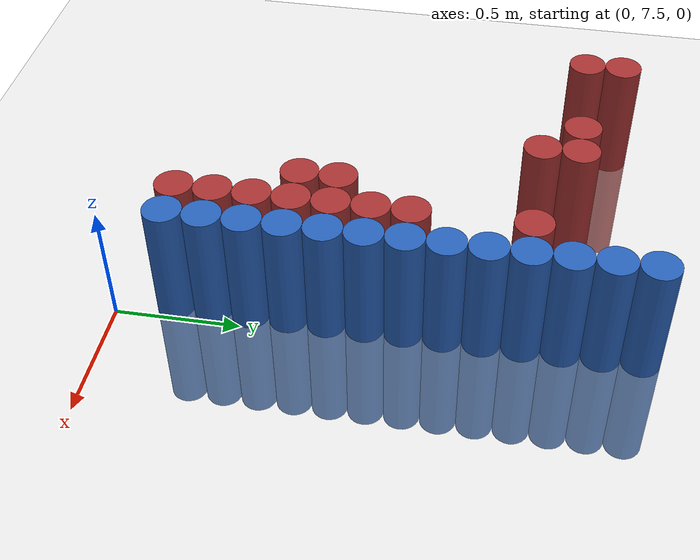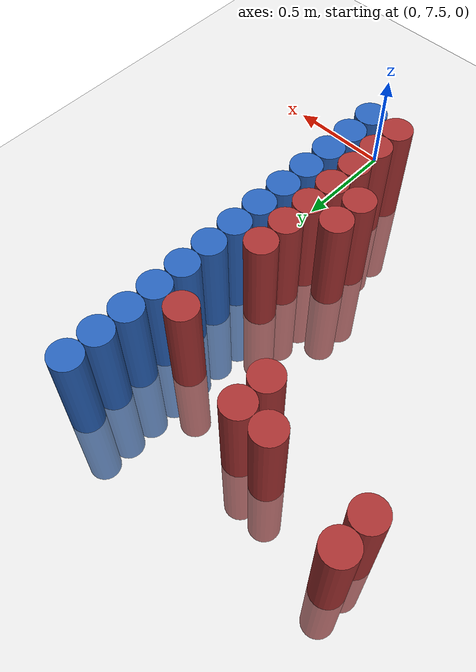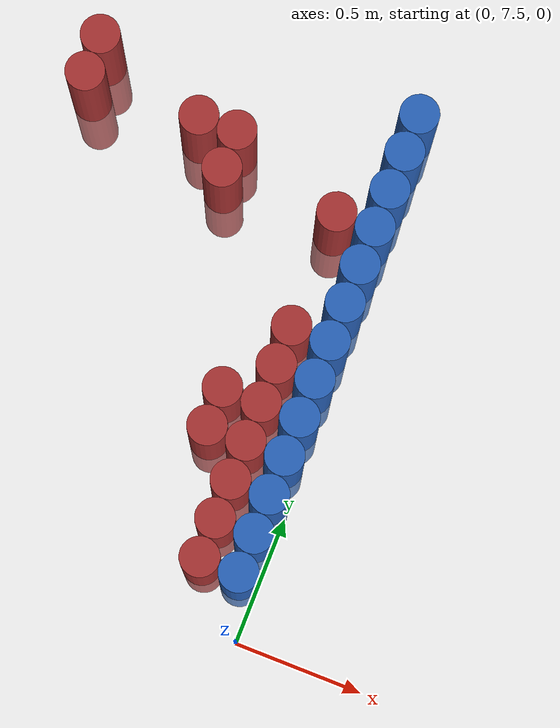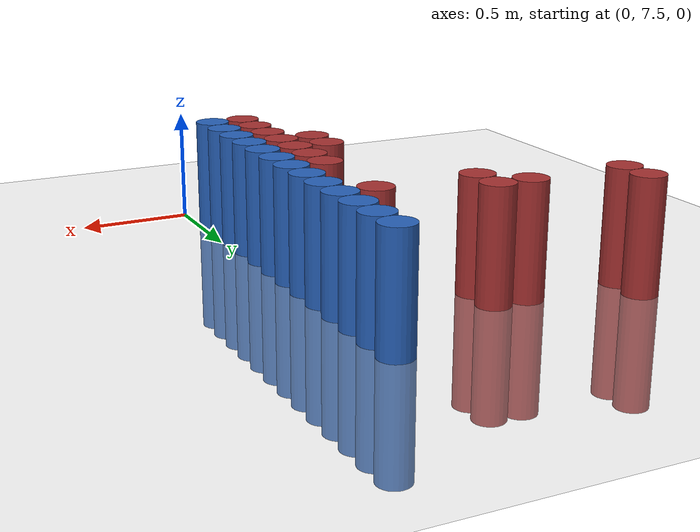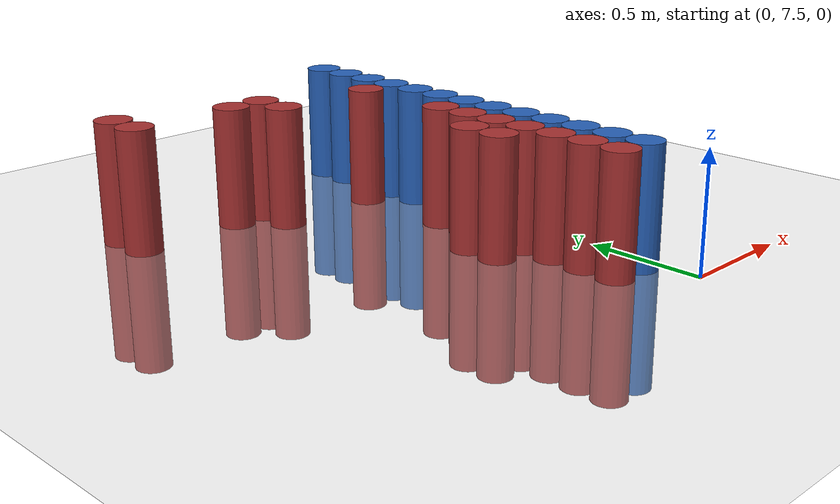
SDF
<sdf version="1.6">
 <world name="default">
  <model name="ground_plane">
   <static>1</static>
   <link name="link">
    <collision name="collision">
     <geometry><plane><normal>0 0 1</normal><size>100 100</size></plane></geometry>
     <surface><friction><ode><mu>100</mu><mu2>50</mu2></ode></friction></surface>
    </collision>
    <visual name="visual">
     <cast_shadows>0</cast_shadows>
     <geometry><plane><normal>0 0 1</normal><size>100 100</size></plane></geometry>
     <material>
      <script><uri>file://media/materials/scripts/gazebo.material</uri><name>Gazebo/Grey</name></script>
     </material>
    </visual>
   </link>
  </model>
  <model name="unit_cylinder_209">
   <static>1</static>
   <pose>-1.275000 9.225000 0.000000 0.000000 0.000000 0.000000</pose>
   <link name="link">
    <inertial>
     <mass>1</mass>
     <inertia><ixx>0.145833</ixx><ixy>0</ixy><ixz>0</ixz><iyy>0.145833</iyy><iyz>0</iyz><izz>0.125</izz></inertia>
    </inertial>
    <collision name="collision">
     <geometry><cylinder><radius>0.075000</radius><length>1</length></cylinder></geometry>
    </collision>
    <visual name="visual">
     <geometry><cylinder><radius>0.075000</radius><length>1</length></cylinder></geometry>
     <material>
      <ambient>0.648000 0.192000 0.192000 1</ambient>
      <diffuse>0.648000 0.192000 0.192000 1</diffuse>
     </material>
     <material>
      <script><name>Gazebo/Grey</name><uri>file://media/materials/scripts/gazebo.material</uri></script>
     </material>
    </visual>
   </link>
  </model>
  <model name="unit_cylinder_210">
   <static>1</static>
   <pose>-1.275000 9.375000 0.000000 0.000000 0.000000 0.000000</pose>
   <link name="link">
    <inertial>
     <mass>1</mass>
     <inertia><ixx>0.145833</ixx><ixy>0</ixy><ixz>0</ixz><iyy>0.145833</iyy><iyz>0</iyz><izz>0.125</izz></inertia>
    </inertial>
    <collision name="collision">
     <geometry><cylinder><radius>0.075000</radius><length>1</length></cylinder></geometry>
    </collision>
    <visual name="visual">
     <geometry><cylinder><radius>0.075000</radius><length>1</length></cylinder></geometry>
     <material>
      <ambient>0.648000 0.192000 0.192000 1</ambient>
      <diffuse>0.648000 0.192000 0.192000 1</diffuse>
     </material>
     <material>
      <script><name>Gazebo/Grey</name><uri>file://media/materials/scripts/gazebo.material</uri></script>
     </material>
    </visual>
   </link>
  </model>
  <model name="unit_cylinder_213">
   <static>1</static>
   <pose>-0.825000 9.225000 0.000000 0.000000 0.000000 0.000000</pose>
   <link name="link">
    <inertial>
     <mass>1</mass>
     <inertia><ixx>0.145833</ixx><ixy>0</ixy><ixz>0</ixz><iyy>0.145833</iyy><iyz>0</iyz><izz>0.125</izz></inertia>
    </inertial>
    <collision name="collision">
     <geometry><cylinder><radius>0.075000</radius><length>1</length></cylinder></geometry>
    </collision>
    <visual name="visual">
     <geometry><cylinder><radius>0.075000</radius><length>1</length></cylinder></geometry>
     <material>
      <ambient>0.648000 0.192000 0.192000 1</ambient>
      <diffuse>0.648000 0.192000 0.192000 1</diffuse>
     </material>
     <material>
      <script><name>Gazebo/Grey</name><uri>file://media/materials/scripts/gazebo.material</uri></script>
     </material>
    </visual>
   </link>
  </model>
  <model name="unit_cylinder_216">
   <static>1</static>
   <pose>-0.675000 9.075000 0.000000 0.000000 0.000000 0.000000</pose>
   <link name="link">
    <inertial>
     <mass>1</mass>
     <inertia><ixx>0.145833</ixx><ixy>0</ixy><ixz>0</ixz><iyy>0.145833</iyy><iyz>0</iyz><izz>0.125</izz></inertia>
    </inertial>
    <collision name="collision">
     <geometry><cylinder><radius>0.075000</radius><length>1</length></cylinder></geometry>
    </collision>
    <visual name="visual">
     <geometry><cylinder><radius>0.075000</radius><length>1</length></cylinder></geometry>
     <material>
      <ambient>0.648000 0.192000 0.192000 1</ambient>
      <diffuse>0.648000 0.192000 0.192000 1</diffuse>
     </material>
     <material>
      <script><name>Gazebo/Grey</name><uri>file://media/materials/scripts/gazebo.material</uri></script>
     </material>
    </visual>
   </link>
  </model>
  <model name="unit_cylinder_217">
   <static>1</static>
   <pose>-0.675000 9.225000 0.000000 0.000000 0.000000 0.000000</pose>
   <link name="link">
    <inertial>
     <mass>1</mass>
     <inertia><ixx>0.145833</ixx><ixy>0</ixy><ixz>0</ixz><iyy>0.145833</iyy><iyz>0</iyz><izz>0.125</izz></inertia>
    </inertial>
    <collision name="collision">
     <geometry><cylinder><radius>0.075000</radius><length>1</length></cylinder></geometry>
    </collision>
    <visual name="visual">
     <geometry><cylinder><radius>0.075000</radius><length>1</length></cylinder></geometry>
     <material>
      <ambient>0.648000 0.192000 0.192000 1</ambient>
      <diffuse>0.648000 0.192000 0.192000 1</diffuse>
     </material>
     <material>
      <script><name>Gazebo/Grey</name><uri>file://media/materials/scripts/gazebo.material</uri></script>
     </material>
    </visual>
   </link>
  </model>
  <model name="unit_cylinder_221">
   <static>1</static>
   <pose>-0.375000 8.175000 0.000000 0.000000 0.000000 0.000000</pose>
   <link name="link">
    <inertial>
     <mass>1</mass>
     <inertia><ixx>0.145833</ixx><ixy>0</ixy><ixz>0</ixz><iyy>0.145833</iyy><iyz>0</iyz><izz>0.125</izz></inertia>
    </inertial>
    <collision name="collision">
     <geometry><cylinder><radius>0.075000</radius><length>1</length></cylinder></geometry>
    </collision>
    <visual name="visual">
     <geometry><cylinder><radius>0.075000</radius><length>1</length></cylinder></geometry>
     <material>
      <ambient>0.648000 0.192000 0.192000 1</ambient>
      <diffuse>0.648000 0.192000 0.192000 1</diffuse>
     </material>
     <material>
      <script><name>Gazebo/Grey</name><uri>file://media/materials/scripts/gazebo.material</uri></script>
     </material>
    </visual>
   </link>
  </model>
  <model name="unit_cylinder_222">
   <static>1</static>
   <pose>-0.375000 8.325000 0.000000 0.000000 0.000000 0.000000</pose>
   <link name="link">
    <inertial>
     <mass>1</mass>
     <inertia><ixx>0.145833</ixx><ixy>0</ixy><ixz>0</ixz><iyy>0.145833</iyy><iyz>0</iyz><izz>0.125</izz></inertia>
    </inertial>
    <collision name="collision">
     <geometry><cylinder><radius>0.075000</radius><length>1</length></cylinder></geometry>
    </collision>
    <visual name="visual">
     <geometry><cylinder><radius>0.075000</radius><length>1</length></cylinder></geometry>
     <material>
      <ambient>0.648000 0.192000 0.192000 1</ambient>
      <diffuse>0.648000 0.192000 0.192000 1</diffuse>
     </material>
     <material>
      <script><name>Gazebo/Grey</name><uri>file://media/materials/scripts/gazebo.material</uri></script>
     </material>
    </visual>
   </link>
  </model>
  <model name="unit_cylinder_235">
   <static>1</static>
   <pose>-0.225000 7.725000 0.000000 0.000000 0.000000 0.000000</pose>
   <link name="link">
    <inertial>
     <mass>1</mass>
     <inertia><ixx>0.145833</ixx><ixy>0</ixy><ixz>0</ixz><iyy>0.145833</iyy><iyz>0</iyz><izz>0.125</izz></inertia>
    </inertial>
    <collision name="collision">
     <geometry><cylinder><radius>0.075000</radius><length>1</length></cylinder></geometry>
    </collision>
    <visual name="visual">
     <geometry><cylinder><radius>0.075000</radius><length>1</length></cylinder></geometry>
     <material>
      <ambient>0.648000 0.192000 0.192000 1</ambient>
      <diffuse>0.648000 0.192000 0.192000 1</diffuse>
     </material>
     <material>
      <script><name>Gazebo/Grey</name><uri>file://media/materials/scripts/gazebo.material</uri></script>
     </material>
    </visual>
   </link>
  </model>
  <model name="unit_cylinder_236">
   <static>1</static>
   <pose>-0.225000 7.875000 0.000000 0.000000 0.000000 0.000000</pose>
   <link name="link">
    <inertial>
     <mass>1</mass>
     <inertia><ixx>0.145833</ixx><ixy>0</ixy><ixz>0</ixz><iyy>0.145833</iyy><iyz>0</iyz><izz>0.125</izz></inertia>
    </inertial>
    <collision name="collision">
     <geometry><cylinder><radius>0.075000</radius><length>1</length></cylinder></geometry>
    </collision>
    <visual name="visual">
     <geometry><cylinder><radius>0.075000</radius><length>1</length></cylinder></geometry>
     <material>
      <ambient>0.648000 0.192000 0.192000 1</ambient>
      <diffuse>0.648000 0.192000 0.192000 1</diffuse>
     </material>
     <material>
      <script><name>Gazebo/Grey</name><uri>file://media/materials/scripts/gazebo.material</uri></script>
     </material>
    </visual>
   </link>
  </model>
  <model name="unit_cylinder_237">
   <static>1</static>
   <pose>-0.225000 8.025000 0.000000 0.000000 0.000000 0.000000</pose>
   <link name="link">
    <inertial>
     <mass>1</mass>
     <inertia><ixx>0.145833</ixx><ixy>0</ixy><ixz>0</ixz><iyy>0.145833</iyy><iyz>0</iyz><izz>0.125</izz></inertia>
    </inertial>
    <collision name="collision">
     <geometry><cylinder><radius>0.075000</radius><length>1</length></cylinder></geometry>
    </collision>
    <visual name="visual">
     <geometry><cylinder><radius>0.075000</radius><length>1</length></cylinder></geometry>
     <material>
      <ambient>0.648000 0.192000 0.192000 1</ambient>
      <diffuse>0.648000 0.192000 0.192000 1</diffuse>
     </material>
     <material>
      <script><name>Gazebo/Grey</name><uri>file://media/materials/scripts/gazebo.material</uri></script>
     </material>
    </visual>
   </link>
  </model>
  <model name="unit_cylinder_238">
   <static>1</static>
   <pose>-0.225000 8.175000 0.000000 0.000000 0.000000 0.000000</pose>
   <link name="link">
    <inertial>
     <mass>1</mass>
     <inertia><ixx>0.145833</ixx><ixy>0</ixy><ixz>0</ixz><iyy>0.145833</iyy><iyz>0</iyz><izz>0.125</izz></inertia>
    </inertial>
    <collision name="collision">
     <geometry><cylinder><radius>0.075000</radius><length>1</length></cylinder></geometry>
    </collision>
    <visual name="visual">
     <geometry><cylinder><radius>0.075000</radius><length>1</length></cylinder></geometry>
     <material>
      <ambient>0.648000 0.192000 0.192000 1</ambient>
      <diffuse>0.648000 0.192000 0.192000 1</diffuse>
     </material>
     <material>
      <script><name>Gazebo/Grey</name><uri>file://media/materials/scripts/gazebo.material</uri></script>
     </material>
    </visual>
   </link>
  </model>
  <model name="unit_cylinder_239">
   <static>1</static>
   <pose>-0.225000 8.325000 0.000000 0.000000 0.000000 0.000000</pose>
   <link name="link">
    <inertial>
     <mass>1</mass>
     <inertia><ixx>0.145833</ixx><ixy>0</ixy><ixz>0</ixz><iyy>0.145833</iyy><iyz>0</iyz><izz>0.125</izz></inertia>
    </inertial>
    <collision name="collision">
     <geometry><cylinder><radius>0.075000</radius><length>1</length></cylinder></geometry>
    </collision>
    <visual name="visual">
     <geometry><cylinder><radius>0.075000</radius><length>1</length></cylinder></geometry>
     <material>
      <ambient>0.648000 0.192000 0.192000 1</ambient>
      <diffuse>0.648000 0.192000 0.192000 1</diffuse>
     </material>
     <material>
      <script><name>Gazebo/Grey</name><uri>file://media/materials/scripts/gazebo.material</uri></script>
     </material>
    </visual>
   </link>
  </model>
  <model name="unit_cylinder_240">
   <static>1</static>
   <pose>-0.225000 8.475000 0.000000 0.000000 0.000000 0.000000</pose>
   <link name="link">
    <inertial>
     <mass>1</mass>
     <inertia><ixx>0.145833</ixx><ixy>0</ixy><ixz>0</ixz><iyy>0.145833</iyy><iyz>0</iyz><izz>0.125</izz></inertia>
    </inertial>
    <collision name="collision">
     <geometry><cylinder><radius>0.075000</radius><length>1</length></cylinder></geometry>
    </collision>
    <visual name="visual">
     <geometry><cylinder><radius>0.075000</radius><length>1</length></cylinder></geometry>
     <material>
      <ambient>0.648000 0.192000 0.192000 1</ambient>
      <diffuse>0.648000 0.192000 0.192000 1</diffuse>
     </material>
     <material>
      <script><name>Gazebo/Grey</name><uri>file://media/materials/scripts/gazebo.material</uri></script>
     </material>
    </visual>
   </link>
  </model>
  <model name="unit_cylinder_241">
   <static>1</static>
   <pose>-0.225000 8.625000 0.000000 0.000000 0.000000 0.000000</pose>
   <link name="link">
    <inertial>
     <mass>1</mass>
     <inertia><ixx>0.145833</ixx><ixy>0</ixy><ixz>0</ixz><iyy>0.145833</iyy><iyz>0</iyz><izz>0.125</izz></inertia>
    </inertial>
    <collision name="collision">
     <geometry><cylinder><radius>0.075000</radius><length>1</length></cylinder></geometry>
    </collision>
    <visual name="visual">
     <geometry><cylinder><radius>0.075000</radius><length>1</length></cylinder></geometry>
     <material>
      <ambient>0.648000 0.192000 0.192000 1</ambient>
      <diffuse>0.648000 0.192000 0.192000 1</diffuse>
     </material>
     <material>
      <script><name>Gazebo/Grey</name><uri>file://media/materials/scripts/gazebo.material</uri></script>
     </material>
    </visual>
   </link>
  </model>
  <model name="unit_cylinder_242">
   <static>1</static>
   <pose>-0.225000 9.075000 0.000000 0.000000 0.000000 0.000000</pose>
   <link name="link">
    <inertial>
     <mass>1</mass>
     <inertia><ixx>0.145833</ixx><ixy>0</ixy><ixz>0</ixz><iyy>0.145833</iyy><iyz>0</iyz><izz>0.125</izz></inertia>
    </inertial>
    <collision name="collision">
     <geometry><cylinder><radius>0.075000</radius><length>1</length></cylinder></geometry>
    </collision>
    <visual name="visual">
     <geometry><cylinder><radius>0.075000</radius><length>1</length></cylinder></geometry>
     <material>
      <ambient>0.648000 0.192000 0.192000 1</ambient>
      <diffuse>0.648000 0.192000 0.192000 1</diffuse>
     </material>
     <material>
      <script><name>Gazebo/Grey</name><uri>file://media/materials/scripts/gazebo.material</uri></script>
     </material>
    </visual>
   </link>
  </model>
  <model name="unit_cylinder_260">
   <static>1</static>
   <pose>-0.075000 7.725000 0.000000 0.000000 0.000000 0.000000</pose>
   <link name="link">
    <inertial>
     <mass>1</mass>
     <inertia><ixx>0.145833</ixx><ixy>0</ixy><ixz>0</ixz><iyy>0.145833</iyy><iyz>0</iyz><izz>0.125</izz></inertia>
    </inertial>
    <collision name="collision">
     <geometry><cylinder><radius>0.075000</radius><length>1</length></cylinder></geometry>
    </collision>
    <visual name="visual">
     <geometry><cylinder><radius>0.075000</radius><length>1</length></cylinder></geometry>
     <material>
      <ambient>0.152000 0.379000 0.720000 1</ambient>
      <diffuse>0.152000 0.379000 0.720000 1</diffuse>
     </material>
     <material>
      <script><name>Gazebo/Grey</name><uri>file://media/materials/scripts/gazebo.material</uri></script>
     </material>
    </visual>
   </link>
  </model>
  <model name="unit_cylinder_261">
   <static>1</static>
   <pose>-0.075000 7.875000 0.000000 0.000000 0.000000 0.000000</pose>
   <link name="link">
    <inertial>
     <mass>1</mass>
     <inertia><ixx>0.145833</ixx><ixy>0</ixy><ixz>0</ixz><iyy>0.145833</iyy><iyz>0</iyz><izz>0.125</izz></inertia>
    </inertial>
    <collision name="collision">
     <geometry><cylinder><radius>0.075000</radius><length>1</length></cylinder></geometry>
    </collision>
    <visual name="visual">
     <geometry><cylinder><radius>0.075000</radius><length>1</length></cylinder></geometry>
     <material>
      <ambient>0.152000 0.379000 0.720000 1</ambient>
      <diffuse>0.152000 0.379000 0.720000 1</diffuse>
     </material>
     <material>
      <script><name>Gazebo/Grey</name><uri>file://media/materials/scripts/gazebo.material</uri></script>
     </material>
    </visual>
   </link>
  </model>
  <model name="unit_cylinder_262">
   <static>1</static>
   <pose>-0.075000 8.025000 0.000000 0.000000 0.000000 0.000000</pose>
   <link name="link">
    <inertial>
     <mass>1</mass>
     <inertia><ixx>0.145833</ixx><ixy>0</ixy><ixz>0</ixz><iyy>0.145833</iyy><iyz>0</iyz><izz>0.125</izz></inertia>
    </inertial>
    <collision name="collision">
     <geometry><cylinder><radius>0.075000</radius><length>1</length></cylinder></geometry>
    </collision>
    <visual name="visual">
     <geometry><cylinder><radius>0.075000</radius><length>1</length></cylinder></geometry>
     <material>
      <ambient>0.152000 0.379000 0.720000 1</ambient>
      <diffuse>0.152000 0.379000 0.720000 1</diffuse>
     </material>
     <material>
      <script><name>Gazebo/Grey</name><uri>file://media/materials/scripts/gazebo.material</uri></script>
     </material>
    </visual>
   </link>
  </model>
  <model name="unit_cylinder_263">
   <static>1</static>
   <pose>-0.075000 8.175000 0.000000 0.000000 0.000000 0.000000</pose>
   <link name="link">
    <inertial>
     <mass>1</mass>
     <inertia><ixx>0.145833</ixx><ixy>0</ixy><ixz>0</ixz><iyy>0.145833</iyy><iyz>0</iyz><izz>0.125</izz></inertia>
    </inertial>
    <collision name="collision">
     <geometry><cylinder><radius>0.075000</radius><length>1</length></cylinder></geometry>
    </collision>
    <visual name="visual">
     <geometry><cylinder><radius>0.075000</radius><length>1</length></cylinder></geometry>
     <material>
      <ambient>0.152000 0.379000 0.720000 1</ambient>
      <diffuse>0.152000 0.379000 0.720000 1</diffuse>
     </material>
     <material>
      <script><name>Gazebo/Grey</name><uri>file://media/materials/scripts/gazebo.material</uri></script>
     </material>
    </visual>
   </link>
  </model>
  <model name="unit_cylinder_264">
   <static>1</static>
   <pose>-0.075000 8.325000 0.000000 0.000000 0.000000 0.000000</pose>
   <link name="link">
    <inertial>
     <mass>1</mass>
     <inertia><ixx>0.145833</ixx><ixy>0</ixy><ixz>0</ixz><iyy>0.145833</iyy><iyz>0</iyz><izz>0.125</izz></inertia>
    </inertial>
    <collision name="collision">
     <geometry><cylinder><radius>0.075000</radius><length>1</length></cylinder></geometry>
    </collision>
    <visual name="visual">
     <geometry><cylinder><radius>0.075000</radius><length>1</length></cylinder></geometry>
     <material>
      <ambient>0.152000 0.379000 0.720000 1</ambient>
      <diffuse>0.152000 0.379000 0.720000 1</diffuse>
     </material>
     <material>
      <script><name>Gazebo/Grey</name><uri>file://media/materials/scripts/gazebo.material</uri></script>
     </material>
    </visual>
   </link>
  </model>
  <model name="unit_cylinder_265">
   <static>1</static>
   <pose>-0.075000 8.475000 0.000000 0.000000 0.000000 0.000000</pose>
   <link name="link">
    <inertial>
     <mass>1</mass>
     <inertia><ixx>0.145833</ixx><ixy>0</ixy><ixz>0</ixz><iyy>0.145833</iyy><iyz>0</iyz><izz>0.125</izz></inertia>
    </inertial>
    <collision name="collision">
     <geometry><cylinder><radius>0.075000</radius><length>1</length></cylinder></geometry>
    </collision>
    <visual name="visual">
     <geometry><cylinder><radius>0.075000</radius><length>1</length></cylinder></geometry>
     <material>
      <ambient>0.152000 0.379000 0.720000 1</ambient>
      <diffuse>0.152000 0.379000 0.720000 1</diffuse>
     </material>
     <material>
      <script><name>Gazebo/Grey</name><uri>file://media/materials/scripts/gazebo.material</uri></script>
     </material>
    </visual>
   </link>
  </model>
  <model name="unit_cylinder_266">
   <static>1</static>
   <pose>-0.075000 8.625000 0.000000 0.000000 0.000000 0.000000</pose>
   <link name="link">
    <inertial>
     <mass>1</mass>
     <inertia><ixx>0.145833</ixx><ixy>0</ixy><ixz>0</ixz><iyy>0.145833</iyy><iyz>0</iyz><izz>0.125</izz></inertia>
    </inertial>
    <collision name="collision">
     <geometry><cylinder><radius>0.075000</radius><length>1</length></cylinder></geometry>
    </collision>
    <visual name="visual">
     <geometry><cylinder><radius>0.075000</radius><length>1</length></cylinder></geometry>
     <material>
      <ambient>0.152000 0.379000 0.720000 1</ambient>
      <diffuse>0.152000 0.379000 0.720000 1</diffuse>
     </material>
     <material>
      <script><name>Gazebo/Grey</name><uri>file://media/materials/scripts/gazebo.material</uri></script>
     </material>
    </visual>
   </link>
  </model>
  <model name="unit_cylinder_267">
   <static>1</static>
   <pose>-0.075000 8.775000 0.000000 0.000000 0.000000 0.000000</pose>
   <link name="link">
    <inertial>
     <mass>1</mass>
     <inertia><ixx>0.145833</ixx><ixy>0</ixy><ixz>0</ixz><iyy>0.145833</iyy><iyz>0</iyz><izz>0.125</izz></inertia>
    </inertial>
    <collision name="collision">
     <geometry><cylinder><radius>0.075000</radius><length>1</length></cylinder></geometry>
    </collision>
    <visual name="visual">
     <geometry><cylinder><radius>0.075000</radius><length>1</length></cylinder></geometry>
     <material>
      <ambient>0.152000 0.379000 0.720000 1</ambient>
      <diffuse>0.152000 0.379000 0.720000 1</diffuse>
     </material>
     <material>
      <script><name>Gazebo/Grey</name><uri>file://media/materials/scripts/gazebo.material</uri></script>
     </material>
    </visual>
   </link>
  </model>
  <model name="unit_cylinder_268">
   <static>1</static>
   <pose>-0.075000 8.925000 0.000000 0.000000 0.000000 0.000000</pose>
   <link name="link">
    <inertial>
     <mass>1</mass>
     <inertia><ixx>0.145833</ixx><ixy>0</ixy><ixz>0</ixz><iyy>0.145833</iyy><iyz>0</iyz><izz>0.125</izz></inertia>
    </inertial>
    <collision name="collision">
     <geometry><cylinder><radius>0.075000</radius><length>1</length></cylinder></geometry>
    </collision>
    <visual name="visual">
     <geometry><cylinder><radius>0.075000</radius><length>1</length></cylinder></geometry>
     <material>
      <ambient>0.152000 0.379000 0.720000 1</ambient>
      <diffuse>0.152000 0.379000 0.720000 1</diffuse>
     </material>
     <material>
      <script><name>Gazebo/Grey</name><uri>file://media/materials/scripts/gazebo.material</uri></script>
     </material>
    </visual>
   </link>
  </model>
  <model name="unit_cylinder_269">
   <static>1</static>
   <pose>-0.075000 9.075000 0.000000 0.000000 0.000000 0.000000</pose>
   <link name="link">
    <inertial>
     <mass>1</mass>
     <inertia><ixx>0.145833</ixx><ixy>0</ixy><ixz>0</ixz><iyy>0.145833</iyy><iyz>0</iyz><izz>0.125</izz></inertia>
    </inertial>
    <collision name="collision">
     <geometry><cylinder><radius>0.075000</radius><length>1</length></cylinder></geometry>
    </collision>
    <visual name="visual">
     <geometry><cylinder><radius>0.075000</radius><length>1</length></cylinder></geometry>
     <material>
      <ambient>0.152000 0.379000 0.720000 1</ambient>
      <diffuse>0.152000 0.379000 0.720000 1</diffuse>
     </material>
     <material>
      <script><name>Gazebo/Grey</name><uri>file://media/materials/scripts/gazebo.material</uri></script>
     </material>
    </visual>
   </link>
  </model>
  <model name="unit_cylinder_270">
   <static>1</static>
   <pose>-0.075000 9.225000 0.000000 0.000000 0.000000 0.000000</pose>
   <link name="link">
    <inertial>
     <mass>1</mass>
     <inertia><ixx>0.145833</ixx><ixy>0</ixy><ixz>0</ixz><iyy>0.145833</iyy><iyz>0</iyz><izz>0.125</izz></inertia>
    </inertial>
    <collision name="collision">
     <geometry><cylinder><radius>0.075000</radius><length>1</length></cylinder></geometry>
    </collision>
    <visual name="visual">
     <geometry><cylinder><radius>0.075000</radius><length>1</length></cylinder></geometry>
     <material>
      <ambient>0.152000 0.379000 0.720000 1</ambient>
      <diffuse>0.152000 0.379000 0.720000 1</diffuse>
     </material>
     <material>
      <script><name>Gazebo/Grey</name><uri>file://media/materials/scripts/gazebo.material</uri></script>
     </material>
    </visual>
   </link>
  </model>
  <model name="unit_cylinder_271">
   <static>1</static>
   <pose>-0.075000 9.375000 0.000000 0.000000 0.000000 0.000000</pose>
   <link name="link">
    <inertial>
     <mass>1</mass>
     <inertia><ixx>0.145833</ixx><ixy>0</ixy><ixz>0</ixz><iyy>0.145833</iyy><iyz>0</iyz><izz>0.125</izz></inertia>
    </inertial>
    <collision name="collision">
     <geometry><cylinder><radius>0.075000</radius><length>1</length></cylinder></geometry>
    </collision>
    <visual name="visual">
     <geometry><cylinder><radius>0.075000</radius><length>1</length></cylinder></geometry>
     <material>
      <ambient>0.152000 0.379000 0.720000 1</ambient>
      <diffuse>0.152000 0.379000 0.720000 1</diffuse>
     </material>
     <material>
      <script><name>Gazebo/Grey</name><uri>file://media/materials/scripts/gazebo.material</uri></script>
     </material>
    </visual>
   </link>
  </model>
  <model name="unit_cylinder_272">
   <static>1</static>
   <pose>-0.075000 9.525000 0.000000 0.000000 0.000000 0.000000</pose>
   <link name="link">
    <inertial>
     <mass>1</mass>
     <inertia><ixx>0.145833</ixx><ixy>0</ixy><ixz>0</ixz><iyy>0.145833</iyy><iyz>0</iyz><izz>0.125</izz></inertia>
    </inertial>
    <collision name="collision">
     <geometry><cylinder><radius>0.075000</radius><length>1</length></cylinder></geometry>
    </collision>
    <visual name="visual">
     <geometry><cylinder><radius>0.075000</radius><length>1</length></cylinder></geometry>
     <material>
      <ambient>0.152000 0.379000 0.720000 1</ambient>
      <diffuse>0.152000 0.379000 0.720000 1</diffuse>
     </material>
     <material>
      <script><name>Gazebo/Grey</name><uri>file://media/materials/scripts/gazebo.material</uri></script>
     </material>
    </visual>
   </link>
  </model>
 </world>
</sdf>
